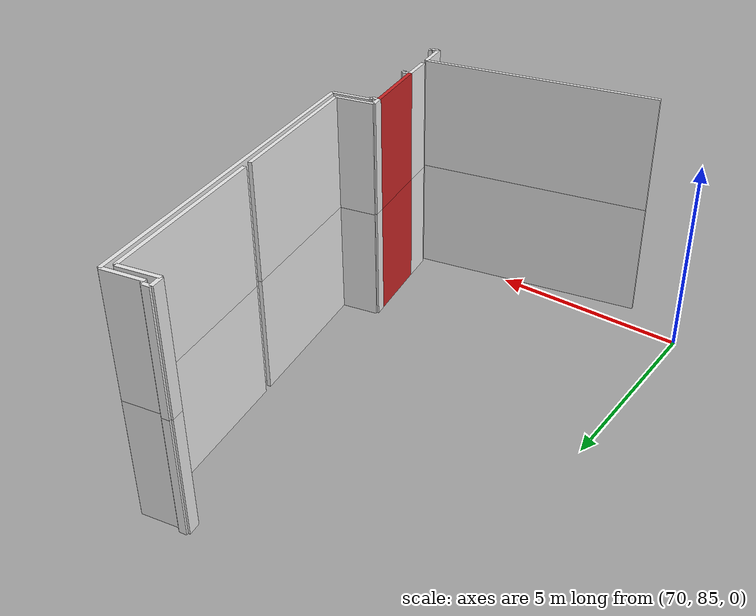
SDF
<sdf version="1.6">
 <world name="default">
  <model name="wall_77.2_87.2_1.5">
   <static>true</static>
   <pose>77.19000000000233 87.18999999994412 1.5 0 0 -1.3690339824572944</pose>
   <link name="link">
    <visual name="visual">
     <geometry><box><size>1.7964409256090668 0.1 3</size></box></geometry>
     <material>
      <script><uri>file://media/materials/scripts/gazebo.material</uri><name>Gazebo/Red</name></script>
     </material>
    </visual>
    <collision name="collision"><geometry><box><size>1.7964409256090668 0.1 3</size></box></geometry></collision>
   </link>
  </model>
  <model name="wall_77.2_87.2_4.5">
   <static>true</static>
   <pose>77.19000000000233 87.18999999994412 4.5 0 0 -1.3690339824572944</pose>
   <link name="link">
    <visual name="visual">
     <geometry><box><size>1.7964409256090668 0.1 3</size></box></geometry>
     <material>
      <script><uri>file://media/materials/scripts/gazebo.material</uri><name>Gazebo/Red</name></script>
     </material>
    </visual>
    <collision name="collision"><geometry><box><size>1.7964409256090668 0.1 3</size></box></geometry></collision>
   </link>
  </model>
  <model name="wall_76.7_94.7_1.5">
   <static>true</static>
   <pose>76.71499999999651 94.6699999999255 1.5 0 0 1.765901464626056</pose>
   <link name="link">
    <visual name="visual">
     <geometry><box><size>4.281226459975188 0.1 3</size></box></geometry>
     <material>
      <script><uri>file://media/materials/scripts/gazebo.material</uri><name>Gazebo/White</name></script>
     </material>
    </visual>
    <collision name="collision"><geometry><box><size>4.281226459975188 0.1 3</size></box></geometry></collision>
   </link>
  </model>
  <model name="wall_75.8_96.7_1.5">
   <static>true</static>
   <pose>75.80999999999767 96.6699999999255 1.5 0 0 -2.9402755450289626</pose>
   <link name="link">
    <visual name="visual">
     <geometry><box><size>1.0001999800229942 0.1 3</size></box></geometry>
     <material>
      <script><uri>file://media/materials/scripts/gazebo.material</uri><name>Gazebo/White</name></script>
     </material>
    </visual>
    <collision name="collision"><geometry><box><size>1.0001999800229942 0.1 3</size></box></geometry></collision>
   </link>
  </model>
  <model name="wall_75.3_96.7_1.5">
   <static>true</static>
   <pose>75.29000000000815 96.71999999997206 1.5 0 0 1.7681918864582145</pose>
   <link name="link">
    <visual name="visual">
     <geometry><box><size>0.30594117108908153 0.1 3</size></box></geometry>
     <material>
      <script><uri>file://media/materials/scripts/gazebo.material</uri><name>Gazebo/White</name></script>
     </material>
    </visual>
    <collision name="collision"><geometry><box><size>0.30594117108908153 0.1 3</size></box></geometry></collision>
   </link>
  </model>
  <model name="wall_77.0_88.2_1.5">
   <static>true</static>
   <pose>76.98000000001048 88.21499999985099 1.5 0 0 1.7748143063542596</pose>
   <link name="link">
    <visual name="visual">
     <geometry><box><size>0.2961418579352255 0.1 3</size></box></geometry>
     <material>
      <script><uri>file://media/materials/scripts/gazebo.material</uri><name>Gazebo/White</name></script>
     </material>
    </visual>
    <collision name="collision"><geometry><box><size>0.2961418579352255 0.1 3</size></box></geometry></collision>
   </link>
  </model>
  <model name="wall_77.4_88.5_1.5">
   <static>true</static>
   <pose>77.44500000000698 88.45999999996275 1.5 0 0 0.19933730516491843</pose>
   <link name="link">
    <visual name="visual">
     <geometry><box><size>1.0100000000277551 0.1 3</size></box></geometry>
     <material>
      <script><uri>file://media/materials/scripts/gazebo.material</uri><name>Gazebo/White</name></script>
     </material>
    </visual>
    <collision name="collision"><geometry><box><size>1.0100000000277551 0.1 3</size></box></geometry></collision>
   </link>
  </model>
  <model name="wall_77.6_90.5_1.5">
   <static>true</static>
   <pose>77.55499999999302 90.46500000008382 1.5 0 0 1.7702100473778921</pose>
   <link name="link">
    <visual name="visual">
     <geometry><box><size>3.88702971437761 0.1 3</size></box></geometry>
     <material>
      <script><uri>file://media/materials/scripts/gazebo.material</uri><name>Gazebo/White</name></script>
     </material>
    </visual>
    <collision name="collision"><geometry><box><size>3.88702971437761 0.1 3</size></box></geometry></collision>
   </link>
  </model>
  <model name="wall_77.4_85.9_1.5">
   <static>true</static>
   <pose>77.44500000000698 85.9199999999255 1.5 0 0 1.7607846146803983</pose>
   <link name="link">
    <visual name="visual">
     <geometry><box><size>0.7942921379528988 0.1 3</size></box></geometry>
     <material>
      <script><uri>file://media/materials/scripts/gazebo.material</uri><name>Gazebo/White</name></script>
     </material>
    </visual>
    <collision name="collision"><geometry><box><size>0.7942921379528988 0.1 3</size></box></geometry></collision>
   </link>
  </model>
  <model name="wall_77.6_84.9_1.5">
   <static>true</static>
   <pose>77.63000000000466 84.94499999983236 1.5 0 0 1.770624971898348</pose>
   <link name="link">
    <visual name="visual">
     <geometry><box><size>0.8060397012984475 0.1 3</size></box></geometry>
     <material>
      <script><uri>file://media/materials/scripts/gazebo.material</uri><name>Gazebo/White</name></script>
     </material>
    </visual>
    <collision name="collision"><geometry><box><size>0.8060397012984475 0.1 3</size></box></geometry></collision>
   </link>
  </model>
  <model name="wall_74.6_84.7_1.5">
   <static>true</static>
   <pose>74.55499999999302 84.74499999987893 1.5 0 0 -2.945481614557841</pose>
   <link name="link">
    <visual name="visual">
     <geometry><box><size>6.107061486488853 0.1 3</size></box></geometry>
     <material>
      <script><uri>file://media/materials/scripts/gazebo.material</uri><name>Gazebo/White</name></script>
     </material>
    </visual>
    <collision name="collision"><geometry><box><size>6.107061486488853 0.1 3</size></box></geometry></collision>
   </link>
  </model>
  <model name="wall_77.8_84.6_1.5">
   <static>true</static>
   <pose>77.80999999999767 84.56999999983236 1.5 0 0 0.1973955600737564</pose>
   <link name="link">
    <visual name="visual">
     <geometry><box><size>0.20396078050535543 0.1 3</size></box></geometry>
     <material>
      <script><uri>file://media/materials/scripts/gazebo.material</uri><name>Gazebo/White</name></script>
     </material>
    </visual>
    <collision name="collision"><geometry><box><size>0.20396078050535543 0.1 3</size></box></geometry></collision>
   </link>
  </model>
  <model name="wall_77.9_84.6_1.5">
   <static>true</static>
   <pose>77.89999999999418 84.63999999989755 1.5 0 0 1.7681918860850883</pose>
   <link name="link">
    <visual name="visual">
     <geometry><box><size>0.10198039035541688 0.1 3</size></box></geometry>
     <material>
      <script><uri>file://media/materials/scripts/gazebo.material</uri><name>Gazebo/White</name></script>
     </material>
    </visual>
    <collision name="collision"><geometry><box><size>0.10198039035541688 0.1 3</size></box></geometry></collision>
   </link>
  </model>
  <model name="wall_77.6_86.3_1.5">
   <static>true</static>
   <pose>77.57000000000698 86.30000000004657 1.5 0 0 1.7681918866447774</pose>
   <link name="link">
    <visual name="visual">
     <geometry><box><size>0.10198039036683233 0.1 3</size></box></geometry>
     <material>
      <script><uri>file://media/materials/scripts/gazebo.material</uri><name>Gazebo/White</name></script>
     </material>
    </visual>
    <collision name="collision"><geometry><box><size>0.10198039036683233 0.1 3</size></box></geometry></collision>
   </link>
  </model>
  <model name="wall_77.5_86.3_1.5">
   <static>true</static>
   <pose>77.46499999999651 86.3300000000745 1.5 0 0 -2.9340964269693144</pose>
   <link name="link">
    <visual name="visual">
     <geometry><box><size>0.19416487839942884 0.1 3</size></box></geometry>
     <material>
      <script><uri>file://media/materials/scripts/gazebo.material</uri><name>Gazebo/White</name></script>
     </material>
    </visual>
    <collision name="collision"><geometry><box><size>0.19416487839942884 0.1 3</size></box></geometry></collision>
   </link>
  </model>
  <model name="wall_77.1_88.1_1.5">
   <static>true</static>
   <pose>77.11000000001513 88.08999999985099 1.5 0 0 0.19739556001778746</pose>
   <link name="link">
    <visual name="visual">
     <geometry><box><size>0.20396078056243275 0.1 3</size></box></geometry>
     <material>
      <script><uri>file://media/materials/scripts/gazebo.material</uri><name>Gazebo/White</name></script>
     </material>
    </visual>
    <collision name="collision"><geometry><box><size>0.20396078056243275 0.1 3</size></box></geometry></collision>
   </link>
  </model>
  <model name="wall_77.2_88.2_1.5">
   <static>true</static>
   <pose>77.20000000001164 88.15500000002794 1.5 0 0 1.7894652721210018</pose>
   <link name="link">
    <visual name="visual">
     <geometry><box><size>0.09219544488607884 0.1 3</size></box></geometry>
     <material>
      <script><uri>file://media/materials/scripts/gazebo.material</uri><name>Gazebo/White</name></script>
     </material>
    </visual>
    <collision name="collision"><geometry><box><size>0.09219544488607884 0.1 3</size></box></geometry></collision>
   </link>
  </model>
  <model name="wall_77.7_88.3_1.5">
   <static>true</static>
   <pose>77.67999999999302 88.30000000004657 1.5 0 0 0.20131710810466522</pose>
   <link name="link">
    <visual name="visual">
     <geometry><box><size>1.0001999799298806 0.1 3</size></box></geometry>
     <material>
      <script><uri>file://media/materials/scripts/gazebo.material</uri><name>Gazebo/White</name></script>
     </material>
    </visual>
    <collision name="collision"><geometry><box><size>1.0001999799298806 0.1 3</size></box></geometry></collision>
   </link>
  </model>
  <model name="wall_77.3_92.7_1.5">
   <static>true</static>
   <pose>77.30999999999767 92.69999999995343 1.5 0 0 1.768191886639571</pose>
   <link name="link">
    <visual name="visual">
     <geometry><box><size>8.770313563465434 0.1 3</size></box></geometry>
     <material>
      <script><uri>file://media/materials/scripts/gazebo.material</uri><name>Gazebo/White</name></script>
     </material>
    </visual>
    <collision name="collision"><geometry><box><size>8.770313563465434 0.1 3</size></box></geometry></collision>
   </link>
  </model>
  <model name="wall_76.0_96.9_1.5">
   <static>true</static>
   <pose>75.95999999999185 96.90500000002794 1.5 0 0 -2.950090935182675</pose>
   <link name="link">
    <visual name="visual">
     <geometry><box><size>0.9982484660926583 0.1 3</size></box></geometry>
     <material>
      <script><uri>file://media/materials/scripts/gazebo.material</uri><name>Gazebo/White</name></script>
     </material>
    </visual>
    <collision name="collision"><geometry><box><size>0.9982484660926583 0.1 3</size></box></geometry></collision>
   </link>
  </model>
  <model name="wall_75.5_96.9_1.5">
   <static>true</static>
   <pose>75.45999999999185 96.85499999998137 1.5 0 0 1.789465272600359</pose>
   <link name="link">
    <visual name="visual">
     <geometry><box><size>0.0921954444188793 0.1 3</size></box></geometry>
     <material>
      <script><uri>file://media/materials/scripts/gazebo.material</uri><name>Gazebo/White</name></script>
     </material>
    </visual>
    <collision name="collision"><geometry><box><size>0.0921954444188793 0.1 3</size></box></geometry></collision>
   </link>
  </model>
  <model name="wall_75.4_96.9_1.5">
   <static>true</static>
   <pose>75.35500000001048 96.88500000000931 1.5 0 0 -2.9849907776618085</pose>
   <link name="link">
    <visual name="visual">
     <geometry><box><size>0.19235384058705793 0.1 3</size></box></geometry>
     <material>
      <script><uri>file://media/materials/scripts/gazebo.material</uri><name>Gazebo/White</name></script>
     </material>
    </visual>
    <collision name="collision"><geometry><box><size>0.19235384058705793 0.1 3</size></box></geometry></collision>
   </link>
  </model>
  <model name="wall_76.7_94.7_4.5">
   <static>true</static>
   <pose>76.71499999999651 94.6699999999255 4.5 0 0 1.765901464626056</pose>
   <link name="link">
    <visual name="visual">
     <geometry><box><size>4.281226459975188 0.1 3</size></box></geometry>
     <material>
      <script><uri>file://media/materials/scripts/gazebo.material</uri><name>Gazebo/White</name></script>
     </material>
    </visual>
    <collision name="collision"><geometry><box><size>4.281226459975188 0.1 3</size></box></geometry></collision>
   </link>
  </model>
  <model name="wall_75.8_96.7_4.5">
   <static>true</static>
   <pose>75.80999999999767 96.6699999999255 4.5 0 0 -2.9402755450289626</pose>
   <link name="link">
    <visual name="visual">
     <geometry><box><size>1.0001999800229942 0.1 3</size></box></geometry>
     <material>
      <script><uri>file://media/materials/scripts/gazebo.material</uri><name>Gazebo/White</name></script>
     </material>
    </visual>
    <collision name="collision"><geometry><box><size>1.0001999800229942 0.1 3</size></box></geometry></collision>
   </link>
  </model>
  <model name="wall_75.3_96.7_4.5">
   <static>true</static>
   <pose>75.29000000000815 96.71999999997206 4.5 0 0 1.7681918864582145</pose>
   <link name="link">
    <visual name="visual">
     <geometry><box><size>0.30594117108908153 0.1 3</size></box></geometry>
     <material>
      <script><uri>file://media/materials/scripts/gazebo.material</uri><name>Gazebo/White</name></script>
     </material>
    </visual>
    <collision name="collision"><geometry><box><size>0.30594117108908153 0.1 3</size></box></geometry></collision>
   </link>
  </model>
  <model name="wall_77.0_88.2_4.5">
   <static>true</static>
   <pose>76.98000000001048 88.21499999985099 4.5 0 0 1.7748143063542596</pose>
   <link name="link">
    <visual name="visual">
     <geometry><box><size>0.2961418579352255 0.1 3</size></box></geometry>
     <material>
      <script><uri>file://media/materials/scripts/gazebo.material</uri><name>Gazebo/White</name></script>
     </material>
    </visual>
    <collision name="collision"><geometry><box><size>0.2961418579352255 0.1 3</size></box></geometry></collision>
   </link>
  </model>
  <model name="wall_77.4_88.5_4.5">
   <static>true</static>
   <pose>77.44500000000698 88.45999999996275 4.5 0 0 0.19933730516491843</pose>
   <link name="link">
    <visual name="visual">
     <geometry><box><size>1.0100000000277551 0.1 3</size></box></geometry>
     <material>
      <script><uri>file://media/materials/scripts/gazebo.material</uri><name>Gazebo/White</name></script>
     </material>
    </visual>
    <collision name="collision"><geometry><box><size>1.0100000000277551 0.1 3</size></box></geometry></collision>
   </link>
  </model>
  <model name="wall_77.6_90.5_4.5">
   <static>true</static>
   <pose>77.55499999999302 90.46500000008382 4.5 0 0 1.7702100473778921</pose>
   <link name="link">
    <visual name="visual">
     <geometry><box><size>3.88702971437761 0.1 3</size></box></geometry>
     <material>
      <script><uri>file://media/materials/scripts/gazebo.material</uri><name>Gazebo/White</name></script>
     </material>
    </visual>
    <collision name="collision"><geometry><box><size>3.88702971437761 0.1 3</size></box></geometry></collision>
   </link>
  </model>
  <model name="wall_77.4_85.9_4.5">
   <static>true</static>
   <pose>77.44500000000698 85.9199999999255 4.5 0 0 1.7607846146803983</pose>
   <link name="link">
    <visual name="visual">
     <geometry><box><size>0.7942921379528988 0.1 3</size></box></geometry>
     <material>
      <script><uri>file://media/materials/scripts/gazebo.material</uri><name>Gazebo/White</name></script>
     </material>
    </visual>
    <collision name="collision"><geometry><box><size>0.7942921379528988 0.1 3</size></box></geometry></collision>
   </link>
  </model>
  <model name="wall_77.6_84.9_4.5">
   <static>true</static>
   <pose>77.63000000000466 84.94499999983236 4.5 0 0 1.770624971898348</pose>
   <link name="link">
    <visual name="visual">
     <geometry><box><size>0.8060397012984475 0.1 3</size></box></geometry>
     <material>
      <script><uri>file://media/materials/scripts/gazebo.material</uri><name>Gazebo/White</name></script>
     </material>
    </visual>
    <collision name="collision"><geometry><box><size>0.8060397012984475 0.1 3</size></box></geometry></collision>
   </link>
  </model>
  <model name="wall_74.6_84.7_4.5">
   <static>true</static>
   <pose>74.55499999999302 84.74499999987893 4.5 0 0 -2.945481614557841</pose>
   <link name="link">
    <visual name="visual">
     <geometry><box><size>6.107061486488853 0.1 3</size></box></geometry>
     <material>
      <script><uri>file://media/materials/scripts/gazebo.material</uri><name>Gazebo/White</name></script>
     </material>
    </visual>
    <collision name="collision"><geometry><box><size>6.107061486488853 0.1 3</size></box></geometry></collision>
   </link>
  </model>
  <model name="wall_77.8_84.6_4.5">
   <static>true</static>
   <pose>77.80999999999767 84.56999999983236 4.5 0 0 0.1973955600737564</pose>
   <link name="link">
    <visual name="visual">
     <geometry><box><size>0.20396078050535543 0.1 3</size></box></geometry>
     <material>
      <script><uri>file://media/materials/scripts/gazebo.material</uri><name>Gazebo/White</name></script>
     </material>
    </visual>
    <collision name="collision"><geometry><box><size>0.20396078050535543 0.1 3</size></box></geometry></collision>
   </link>
  </model>
  <model name="wall_77.9_84.6_4.5">
   <static>true</static>
   <pose>77.89999999999418 84.63999999989755 4.5 0 0 1.7681918860850883</pose>
   <link name="link">
    <visual name="visual">
     <geometry><box><size>0.10198039035541688 0.1 3</size></box></geometry>
     <material>
      <script><uri>file://media/materials/scripts/gazebo.material</uri><name>Gazebo/White</name></script>
     </material>
    </visual>
    <collision name="collision"><geometry><box><size>0.10198039035541688 0.1 3</size></box></geometry></collision>
   </link>
  </model>
  <model name="wall_77.6_86.3_4.5">
   <static>true</static>
   <pose>77.57000000000698 86.30000000004657 4.5 0 0 1.7681918866447774</pose>
   <link name="link">
    <visual name="visual">
     <geometry><box><size>0.10198039036683233 0.1 3</size></box></geometry>
     <material>
      <script><uri>file://media/materials/scripts/gazebo.material</uri><name>Gazebo/White</name></script>
     </material>
    </visual>
    <collision name="collision"><geometry><box><size>0.10198039036683233 0.1 3</size></box></geometry></collision>
   </link>
  </model>
  <model name="wall_77.5_86.3_4.5">
   <static>true</static>
   <pose>77.46499999999651 86.3300000000745 4.5 0 0 -2.9340964269693144</pose>
   <link name="link">
    <visual name="visual">
     <geometry><box><size>0.19416487839942884 0.1 3</size></box></geometry>
     <material>
      <script><uri>file://media/materials/scripts/gazebo.material</uri><name>Gazebo/White</name></script>
     </material>
    </visual>
    <collision name="collision"><geometry><box><size>0.19416487839942884 0.1 3</size></box></geometry></collision>
   </link>
  </model>
  <model name="wall_77.1_88.1_4.5">
   <static>true</static>
   <pose>77.11000000001513 88.08999999985099 4.5 0 0 0.19739556001778746</pose>
   <link name="link">
    <visual name="visual">
     <geometry><box><size>0.20396078056243275 0.1 3</size></box></geometry>
     <material>
      <script><uri>file://media/materials/scripts/gazebo.material</uri><name>Gazebo/White</name></script>
     </material>
    </visual>
    <collision name="collision"><geometry><box><size>0.20396078056243275 0.1 3</size></box></geometry></collision>
   </link>
  </model>
  <model name="wall_77.2_88.2_4.5">
   <static>true</static>
   <pose>77.20000000001164 88.15500000002794 4.5 0 0 1.7894652721210018</pose>
   <link name="link">
    <visual name="visual">
     <geometry><box><size>0.09219544488607884 0.1 3</size></box></geometry>
     <material>
      <script><uri>file://media/materials/scripts/gazebo.material</uri><name>Gazebo/White</name></script>
     </material>
    </visual>
    <collision name="collision"><geometry><box><size>0.09219544488607884 0.1 3</size></box></geometry></collision>
   </link>
  </model>
  <model name="wall_77.7_88.3_4.5">
   <static>true</static>
   <pose>77.67999999999302 88.30000000004657 4.5 0 0 0.20131710810466522</pose>
   <link name="link">
    <visual name="visual">
     <geometry><box><size>1.0001999799298806 0.1 3</size></box></geometry>
     <material>
      <script><uri>file://media/materials/scripts/gazebo.material</uri><name>Gazebo/White</name></script>
     </material>
    </visual>
    <collision name="collision"><geometry><box><size>1.0001999799298806 0.1 3</size></box></geometry></collision>
   </link>
  </model>
  <model name="wall_77.3_92.7_4.5">
   <static>true</static>
   <pose>77.30999999999767 92.69999999995343 4.5 0 0 1.768191886639571</pose>
   <link name="link">
    <visual name="visual">
     <geometry><box><size>8.770313563465434 0.1 3</size></box></geometry>
     <material>
      <script><uri>file://media/materials/scripts/gazebo.material</uri><name>Gazebo/White</name></script>
     </material>
    </visual>
    <collision name="collision"><geometry><box><size>8.770313563465434 0.1 3</size></box></geometry></collision>
   </link>
  </model>
  <model name="wall_76.0_96.9_4.5">
   <static>true</static>
   <pose>75.95999999999185 96.90500000002794 4.5 0 0 -2.950090935182675</pose>
   <link name="link">
    <visual name="visual">
     <geometry><box><size>0.9982484660926583 0.1 3</size></box></geometry>
     <material>
      <script><uri>file://media/materials/scripts/gazebo.material</uri><name>Gazebo/White</name></script>
     </material>
    </visual>
    <collision name="collision"><geometry><box><size>0.9982484660926583 0.1 3</size></box></geometry></collision>
   </link>
  </model>
  <model name="wall_75.5_96.9_4.5">
   <static>true</static>
   <pose>75.45999999999185 96.85499999998137 4.5 0 0 1.789465272600359</pose>
   <link name="link">
    <visual name="visual">
     <geometry><box><size>0.0921954444188793 0.1 3</size></box></geometry>
     <material>
      <script><uri>file://media/materials/scripts/gazebo.material</uri><name>Gazebo/White</name></script>
     </material>
    </visual>
    <collision name="collision"><geometry><box><size>0.0921954444188793 0.1 3</size></box></geometry></collision>
   </link>
  </model>
  <model name="wall_75.4_96.9_4.5">
   <static>true</static>
   <pose>75.35500000001048 96.88500000000931 4.5 0 0 -2.9849907776618085</pose>
   <link name="link">
    <visual name="visual">
     <geometry><box><size>0.19235384058705793 0.1 3</size></box></geometry>
     <material>
      <script><uri>file://media/materials/scripts/gazebo.material</uri><name>Gazebo/White</name></script>
     </material>
    </visual>
    <collision name="collision"><geometry><box><size>0.19235384058705793 0.1 3</size></box></geometry></collision>
   </link>
  </model>
 </world>
</sdf>
